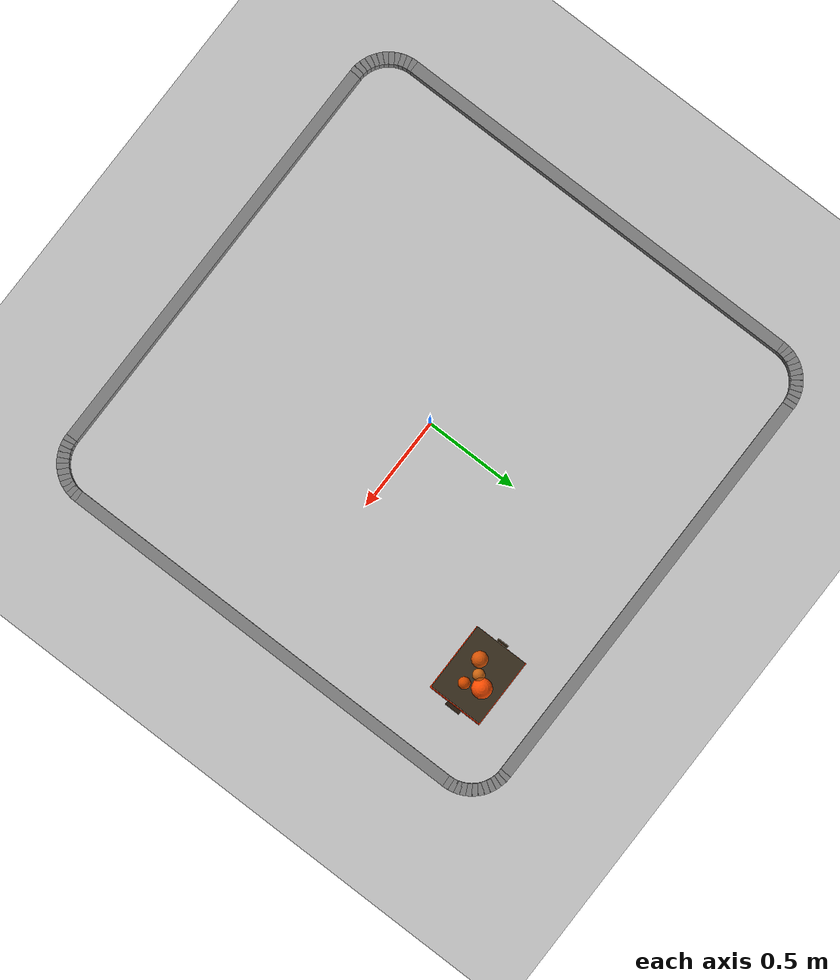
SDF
<sdf version="1.6">
 <world name="test">
  <model name="ground_plane">
   <static>1</static>
   <link name="link">
    <collision name="collision">
     <geometry><plane><normal>0 0 1</normal><size>100 100</size></plane></geometry>
     <surface><friction><ode><mu>100</mu><mu2>50</mu2></ode></friction></surface>
    </collision>
    <visual name="visual">
     <cast_shadows>0</cast_shadows>
     <geometry><plane><normal>0 0 1</normal><size>100 100</size></plane></geometry>
     <material>
      <script><uri>file://media/materials/scripts/gazebo.material</uri><name>Gazebo/Grey</name></script>
     </material>
    </visual>
   </link>
  </model>
  <model name="track_inner">
   <static>1</static>
   <link name="top">
    <pose>0 1.3 0.05 0 -0 0</pose>
    <visual name="v">
     <geometry><box><size>2.2 0.06 0.1</size></box></geometry>
     <material><ambient>0.52 0.52 0.52 1</ambient></material>
    </visual>
    <collision name="c"><geometry><box><size>2.2 0.06 0.1</size></box></geometry></collision>
   </link>
   <link name="bottom">
    <pose>0 -1.3 0.05 0 -0 0</pose>
    <visual name="v">
     <geometry><box><size>2.2 0.06 0.1</size></box></geometry>
     <material><ambient>0.52 0.52 0.52 1</ambient></material>
    </visual>
    <collision name="c"><geometry><box><size>2.2 0.06 0.1</size></box></geometry></collision>
   </link>
   <link name="left">
    <pose>-1.3 0 0.05 0 -0 0</pose>
    <visual name="v">
     <geometry><box><size>0.06 2.2 0.1</size></box></geometry>
     <material><ambient>0.52 0.52 0.52 1</ambient></material>
    </visual>
    <collision name="c"><geometry><box><size>0.06 2.2 0.1</size></box></geometry></collision>
   </link>
   <link name="right">
    <pose>1.3 0 0.05 0 -0 0</pose>
    <visual name="v">
     <geometry><box><size>0.06 2.2 0.1</size></box></geometry>
     <material><ambient>0.52 0.52 0.52 1</ambient></material>
    </visual>
    <collision name="c"><geometry><box><size>0.06 2.2 0.1</size></box></geometry></collision>
   </link>
   <link name="itr0">
    <pose>1.2996 1.1131 0.05 0 -0 1.6362</pose>
    <visual name="v">
     <geometry><box><size>0.0283 0.06 0.1</size></box></geometry>
     <material><ambient>0.52 0.52 0.52 1</ambient></material>
    </visual>
    <collision name="c"><geometry><box><size>0.0283 0.06 0.1</size></box></geometry></collision>
   </link>
   <link name="itr1">
    <pose>1.2962 1.139 0.05 0 -0 1.7671</pose>
    <visual name="v">
     <geometry><box><size>0.0283 0.06 0.1</size></box></geometry>
     <material><ambient>0.52 0.52 0.52 1</ambient></material>
    </visual>
    <collision name="c"><geometry><box><size>0.0283 0.06 0.1</size></box></geometry></collision>
   </link>
   <link name="itr2">
    <pose>1.2894 1.1643 0.05 0 -0 1.898</pose>
    <visual name="v">
     <geometry><box><size>0.0283 0.06 0.1</size></box></geometry>
     <material><ambient>0.52 0.52 0.52 1</ambient></material>
    </visual>
    <collision name="c"><geometry><box><size>0.0283 0.06 0.1</size></box></geometry></collision>
   </link>
   <link name="itr3">
    <pose>1.2794 1.1885 0.05 0 -0 2.0289</pose>
    <visual name="v">
     <geometry><box><size>0.0283 0.06 0.1</size></box></geometry>
     <material><ambient>0.52 0.52 0.52 1</ambient></material>
    </visual>
    <collision name="c"><geometry><box><size>0.0283 0.06 0.1</size></box></geometry></collision>
   </link>
   <link name="itr4">
    <pose>1.2663 1.2111 0.05 0 -0 2.1598</pose>
    <visual name="v">
     <geometry><box><size>0.0283 0.06 0.1</size></box></geometry>
     <material><ambient>0.52 0.52 0.52 1</ambient></material>
    </visual>
    <collision name="c"><geometry><box><size>0.0283 0.06 0.1</size></box></geometry></collision>
   </link>
   <link name="itr5">
    <pose>1.2504 1.2319 0.05 0 -0 2.2907</pose>
    <visual name="v">
     <geometry><box><size>0.0283 0.06 0.1</size></box></geometry>
     <material><ambient>0.52 0.52 0.52 1</ambient></material>
    </visual>
    <collision name="c"><geometry><box><size>0.0283 0.06 0.1</size></box></geometry></collision>
   </link>
   <link name="itr6">
    <pose>1.2319 1.2504 0.05 0 -0 2.4216</pose>
    <visual name="v">
     <geometry><box><size>0.0283 0.06 0.1</size></box></geometry>
     <material><ambient>0.52 0.52 0.52 1</ambient></material>
    </visual>
    <collision name="c"><geometry><box><size>0.0283 0.06 0.1</size></box></geometry></collision>
   </link>
   <link name="itr7">
    <pose>1.2111 1.2663 0.05 0 -0 2.5525</pose>
    <visual name="v">
     <geometry><box><size>0.0283 0.06 0.1</size></box></geometry>
     <material><ambient>0.52 0.52 0.52 1</ambient></material>
    </visual>
    <collision name="c"><geometry><box><size>0.0283 0.06 0.1</size></box></geometry></collision>
   </link>
   <link name="itr8">
    <pose>1.1885 1.2794 0.05 0 -0 2.6834</pose>
    <visual name="v">
     <geometry><box><size>0.0283 0.06 0.1</size></box></geometry>
     <material><ambient>0.52 0.52 0.52 1</ambient></material>
    </visual>
    <collision name="c"><geometry><box><size>0.0283 0.06 0.1</size></box></geometry></collision>
   </link>
   <link name="itr9">
    <pose>1.1643 1.2894 0.05 0 -0 2.8143</pose>
    <visual name="v">
     <geometry><box><size>0.0283 0.06 0.1</size></box></geometry>
     <material><ambient>0.52 0.52 0.52 1</ambient></material>
    </visual>
    <collision name="c"><geometry><box><size>0.0283 0.06 0.1</size></box></geometry></collision>
   </link>
   <link name="itr10">
    <pose>1.139 1.2962 0.05 0 -0 2.9452</pose>
    <visual name="v">
     <geometry><box><size>0.0283 0.06 0.1</size></box></geometry>
     <material><ambient>0.52 0.52 0.52 1</ambient></material>
    </visual>
    <collision name="c"><geometry><box><size>0.0283 0.06 0.1</size></box></geometry></collision>
   </link>
   <link name="itr11">
    <pose>1.1131 1.2996 0.05 0 -0 3.0761</pose>
    <visual name="v">
     <geometry><box><size>0.0283 0.06 0.1</size></box></geometry>
     <material><ambient>0.52 0.52 0.52 1</ambient></material>
    </visual>
    <collision name="c"><geometry><box><size>0.0283 0.06 0.1</size></box></geometry></collision>
   </link>
   <link name="itl0">
    <pose>-1.1131 1.2996 0.05 0 -0 -3.07619</pose>
    <visual name="v">
     <geometry><box><size>0.0283 0.06 0.1</size></box></geometry>
     <material><ambient>0.52 0.52 0.52 1</ambient></material>
    </visual>
    <collision name="c"><geometry><box><size>0.0283 0.06 0.1</size></box></geometry></collision>
   </link>
   <link name="itl1">
    <pose>-1.139 1.2962 0.05 0 -0 -2.94529</pose>
    <visual name="v">
     <geometry><box><size>0.0283 0.06 0.1</size></box></geometry>
     <material><ambient>0.52 0.52 0.52 1</ambient></material>
    </visual>
    <collision name="c"><geometry><box><size>0.0283 0.06 0.1</size></box></geometry></collision>
   </link>
   <link name="itl2">
    <pose>-1.1643 1.2894 0.05 0 -0 -2.81439</pose>
    <visual name="v">
     <geometry><box><size>0.0283 0.06 0.1</size></box></geometry>
     <material><ambient>0.52 0.52 0.52 1</ambient></material>
    </visual>
    <collision name="c"><geometry><box><size>0.0283 0.06 0.1</size></box></geometry></collision>
   </link>
   <link name="itl3">
    <pose>-1.1885 1.2794 0.05 0 -0 -2.68349</pose>
    <visual name="v">
     <geometry><box><size>0.0283 0.06 0.1</size></box></geometry>
     <material><ambient>0.52 0.52 0.52 1</ambient></material>
    </visual>
    <collision name="c"><geometry><box><size>0.0283 0.06 0.1</size></box></geometry></collision>
   </link>
   <link name="itl4">
    <pose>-1.2111 1.2663 0.05 0 -0 -2.55259</pose>
    <visual name="v">
     <geometry><box><size>0.0283 0.06 0.1</size></box></geometry>
     <material><ambient>0.52 0.52 0.52 1</ambient></material>
    </visual>
    <collision name="c"><geometry><box><size>0.0283 0.06 0.1</size></box></geometry></collision>
   </link>
   <link name="itl5">
    <pose>-1.2319 1.2504 0.05 0 -0 -2.42169</pose>
    <visual name="v">
     <geometry><box><size>0.0283 0.06 0.1</size></box></geometry>
     <material><ambient>0.52 0.52 0.52 1</ambient></material>
    </visual>
    <collision name="c"><geometry><box><size>0.0283 0.06 0.1</size></box></geometry></collision>
   </link>
   <link name="itl6">
    <pose>-1.2504 1.2319 0.05 0 -0 -2.29079</pose>
    <visual name="v">
     <geometry><box><size>0.0283 0.06 0.1</size></box></geometry>
     <material><ambient>0.52 0.52 0.52 1</ambient></material>
    </visual>
    <collision name="c"><geometry><box><size>0.0283 0.06 0.1</size></box></geometry></collision>
   </link>
   <link name="itl7">
    <pose>-1.2663 1.2111 0.05 0 -0 -2.15989</pose>
    <visual name="v">
     <geometry><box><size>0.0283 0.06 0.1</size></box></geometry>
     <material><ambient>0.52 0.52 0.52 1</ambient></material>
    </visual>
    <collision name="c"><geometry><box><size>0.0283 0.06 0.1</size></box></geometry></collision>
   </link>
   <link name="itl8">
    <pose>-1.2794 1.1885 0.05 0 -0 -2.02899</pose>
    <visual name="v">
     <geometry><box><size>0.0283 0.06 0.1</size></box></geometry>
     <material><ambient>0.52 0.52 0.52 1</ambient></material>
    </visual>
    <collision name="c"><geometry><box><size>0.0283 0.06 0.1</size></box></geometry></collision>
   </link>
   <link name="itl9">
    <pose>-1.2894 1.1643 0.05 0 -0 -1.89809</pose>
    <visual name="v">
     <geometry><box><size>0.0283 0.06 0.1</size></box></geometry>
     <material><ambient>0.52 0.52 0.52 1</ambient></material>
    </visual>
    <collision name="c"><geometry><box><size>0.0283 0.06 0.1</size></box></geometry></collision>
   </link>
   <link name="itl10">
    <pose>-1.2962 1.139 0.05 0 -0 -1.76719</pose>
    <visual name="v">
     <geometry><box><size>0.0283 0.06 0.1</size></box></geometry>
     <material><ambient>0.52 0.52 0.52 1</ambient></material>
    </visual>
    <collision name="c"><geometry><box><size>0.0283 0.06 0.1</size></box></geometry></collision>
   </link>
   <link name="itl11">
    <pose>-1.2996 1.1131 0.05 0 -0 -1.63628</pose>
    <visual name="v">
     <geometry><box><size>0.0283 0.06 0.1</size></box></geometry>
     <material><ambient>0.52 0.52 0.52 1</ambient></material>
    </visual>
    <collision name="c"><geometry><box><size>0.0283 0.06 0.1</size></box></geometry></collision>
   </link>
   <link name="ibl0">
    <pose>-1.2996 -1.1131 0.05 0 -0 -1.50538</pose>
    <visual name="v">
     <geometry><box><size>0.0283 0.06 0.1</size></box></geometry>
     <material><ambient>0.52 0.52 0.52 1</ambient></material>
    </visual>
    <collision name="c"><geometry><box><size>0.0283 0.06 0.1</size></box></geometry></collision>
   </link>
   <link name="ibl1">
    <pose>-1.2962 -1.139 0.05 0 -0 -1.37448</pose>
    <visual name="v">
     <geometry><box><size>0.0283 0.06 0.1</size></box></geometry>
     <material><ambient>0.52 0.52 0.52 1</ambient></material>
    </visual>
    <collision name="c"><geometry><box><size>0.0283 0.06 0.1</size></box></geometry></collision>
   </link>
   <link name="ibl2">
    <pose>-1.2894 -1.1643 0.05 0 -0 -1.24358</pose>
    <visual name="v">
     <geometry><box><size>0.0283 0.06 0.1</size></box></geometry>
     <material><ambient>0.52 0.52 0.52 1</ambient></material>
    </visual>
    <collision name="c"><geometry><box><size>0.0283 0.06 0.1</size></box></geometry></collision>
   </link>
   <link name="ibl3">
    <pose>-1.2794 -1.1885 0.05 0 -0 -1.11268</pose>
    <visual name="v">
     <geometry><box><size>0.0283 0.06 0.1</size></box></geometry>
     <material><ambient>0.52 0.52 0.52 1</ambient></material>
    </visual>
    <collision name="c"><geometry><box><size>0.0283 0.06 0.1</size></box></geometry></collision>
   </link>
   <link name="ibl4">
    <pose>-1.2663 -1.2111 0.05 0 -0 -0.981785</pose>
    <visual name="v">
     <geometry><box><size>0.0283 0.06 0.1</size></box></geometry>
     <material><ambient>0.52 0.52 0.52 1</ambient></material>
    </visual>
    <collision name="c"><geometry><box><size>0.0283 0.06 0.1</size></box></geometry></collision>
   </link>
   <link name="ibl5">
    <pose>-1.2504 -1.2319 0.05 0 -0 -0.850885</pose>
    <visual name="v">
     <geometry><box><size>0.0283 0.06 0.1</size></box></geometry>
     <material><ambient>0.52 0.52 0.52 1</ambient></material>
    </visual>
    <collision name="c"><geometry><box><size>0.0283 0.06 0.1</size></box></geometry></collision>
   </link>
   <link name="ibl6">
    <pose>-1.2319 -1.2504 0.05 0 -0 -0.719985</pose>
    <visual name="v">
     <geometry><box><size>0.0283 0.06 0.1</size></box></geometry>
     <material><ambient>0.52 0.52 0.52 1</ambient></material>
    </visual>
    <collision name="c"><geometry><box><size>0.0283 0.06 0.1</size></box></geometry></collision>
   </link>
   <link name="ibl7">
    <pose>-1.2111 -1.2663 0.05 0 -0 -0.589085</pose>
    <visual name="v">
     <geometry><box><size>0.0283 0.06 0.1</size></box></geometry>
     <material><ambient>0.52 0.52 0.52 1</ambient></material>
    </visual>
    <collision name="c"><geometry><box><size>0.0283 0.06 0.1</size></box></geometry></collision>
   </link>
   <link name="ibl8">
    <pose>-1.1885 -1.2794 0.05 0 -0 -0.458185</pose>
    <visual name="v">
     <geometry><box><size>0.0283 0.06 0.1</size></box></geometry>
     <material><ambient>0.52 0.52 0.52 1</ambient></material>
    </visual>
    <collision name="c"><geometry><box><size>0.0283 0.06 0.1</size></box></geometry></collision>
   </link>
   <link name="ibl9">
    <pose>-1.1643 -1.2894 0.05 0 -0 -0.327285</pose>
    <visual name="v">
     <geometry><box><size>0.0283 0.06 0.1</size></box></geometry>
     <material><ambient>0.52 0.52 0.52 1</ambient></material>
    </visual>
    <collision name="c"><geometry><box><size>0.0283 0.06 0.1</size></box></geometry></collision>
   </link>
   <link name="ibl10">
    <pose>-1.139 -1.2962 0.05 0 -0 -0.196385</pose>
    <visual name="v">
     <geometry><box><size>0.0283 0.06 0.1</size></box></geometry>
     <material><ambient>0.52 0.52 0.52 1</ambient></material>
    </visual>
    <collision name="c"><geometry><box><size>0.0283 0.06 0.1</size></box></geometry></collision>
   </link>
   <link name="ibl11">
    <pose>-1.1131 -1.2996 0.05 0 -0 -0.065485</pose>
    <visual name="v">
     <geometry><box><size>0.0283 0.06 0.1</size></box></geometry>
     <material><ambient>0.52 0.52 0.52 1</ambient></material>
    </visual>
    <collision name="c"><geometry><box><size>0.0283 0.06 0.1</size></box></geometry></collision>
   </link>
   <link name="ibr0">
    <pose>1.1131 -1.2996 0.05 0 -0 0.065415</pose>
    <visual name="v">
     <geometry><box><size>0.0283 0.06 0.1</size></box></geometry>
     <material><ambient>0.52 0.52 0.52 1</ambient></material>
    </visual>
    <collision name="c"><geometry><box><size>0.0283 0.06 0.1</size></box></geometry></collision>
   </link>
   <link name="ibr1">
    <pose>1.139 -1.2962 0.05 0 -0 0.196315</pose>
    <visual name="v">
     <geometry><box><size>0.0283 0.06 0.1</size></box></geometry>
     <material><ambient>0.52 0.52 0.52 1</ambient></material>
    </visual>
    <collision name="c"><geometry><box><size>0.0283 0.06 0.1</size></box></geometry></collision>
   </link>
   <link name="ibr2">
    <pose>1.1643 -1.2894 0.05 0 -0 0.327215</pose>
    <visual name="v">
     <geometry><box><size>0.0283 0.06 0.1</size></box></geometry>
     <material><ambient>0.52 0.52 0.52 1</ambient></material>
    </visual>
    <collision name="c"><geometry><box><size>0.0283 0.06 0.1</size></box></geometry></collision>
   </link>
   <link name="ibr3">
    <pose>1.1885 -1.2794 0.05 0 -0 0.458115</pose>
    <visual name="v">
     <geometry><box><size>0.0283 0.06 0.1</size></box></geometry>
     <material><ambient>0.52 0.52 0.52 1</ambient></material>
    </visual>
    <collision name="c"><geometry><box><size>0.0283 0.06 0.1</size></box></geometry></collision>
   </link>
   <link name="ibr4">
    <pose>1.2111 -1.2663 0.05 0 -0 0.589015</pose>
    <visual name="v">
     <geometry><box><size>0.0283 0.06 0.1</size></box></geometry>
     <material><ambient>0.52 0.52 0.52 1</ambient></material>
    </visual>
    <collision name="c"><geometry><box><size>0.0283 0.06 0.1</size></box></geometry></collision>
   </link>
   <link name="ibr5">
    <pose>1.2319 -1.2504 0.05 0 -0 0.719915</pose>
    <visual name="v">
     <geometry><box><size>0.0283 0.06 0.1</size></box></geometry>
     <material><ambient>0.52 0.52 0.52 1</ambient></material>
    </visual>
    <collision name="c"><geometry><box><size>0.0283 0.06 0.1</size></box></geometry></collision>
   </link>
   <link name="ibr6">
    <pose>1.2504 -1.2319 0.05 0 -0 0.850815</pose>
    <visual name="v">
     <geometry><box><size>0.0283 0.06 0.1</size></box></geometry>
     <material><ambient>0.52 0.52 0.52 1</ambient></material>
    </visual>
    <collision name="c"><geometry><box><size>0.0283 0.06 0.1</size></box></geometry></collision>
   </link>
   <link name="ibr7">
    <pose>1.2663 -1.2111 0.05 0 -0 0.981715</pose>
    <visual name="v">
     <geometry><box><size>0.0283 0.06 0.1</size></box></geometry>
     <material><ambient>0.52 0.52 0.52 1</ambient></material>
    </visual>
    <collision name="c"><geometry><box><size>0.0283 0.06 0.1</size></box></geometry></collision>
   </link>
   <link name="ibr8">
    <pose>1.2794 -1.1885 0.05 0 -0 1.11261</pose>
    <visual name="v">
     <geometry><box><size>0.0283 0.06 0.1</size></box></geometry>
     <material><ambient>0.52 0.52 0.52 1</ambient></material>
    </visual>
    <collision name="c"><geometry><box><size>0.0283 0.06 0.1</size></box></geometry></collision>
   </link>
   <link name="ibr9">
    <pose>1.2894 -1.1643 0.05 0 -0 1.24351</pose>
    <visual name="v">
     <geometry><box><size>0.0283 0.06 0.1</size></box></geometry>
     <material><ambient>0.52 0.52 0.52 1</ambient></material>
    </visual>
    <collision name="c"><geometry><box><size>0.0283 0.06 0.1</size></box></geometry></collision>
   </link>
   <link name="ibr10">
    <pose>1.2962 -1.139 0.05 0 -0 1.37441</pose>
    <visual name="v">
     <geometry><box><size>0.0283 0.06 0.1</size></box></geometry>
     <material><ambient>0.52 0.52 0.52 1</ambient></material>
    </visual>
    <collision name="c"><geometry><box><size>0.0283 0.06 0.1</size></box></geometry></collision>
   </link>
   <link name="ibr11">
    <pose>1.2996 -1.1131 0.05 0 -0 1.50531</pose>
    <visual name="v">
     <geometry><box><size>0.0283 0.06 0.1</size></box></geometry>
     <material><ambient>0.52 0.52 0.52 1</ambient></material>
    </visual>
    <collision name="c"><geometry><box><size>0.0283 0.06 0.1</size></box></geometry></collision>
   </link>
  </model>
  <model name="building_fire">
   <static>1</static>
   <link name="body">
    <pose>0 0 0.275 0 -0 0</pose>
    <visual name="body_v">
     <geometry><box><size>0.35 0.28 0.55</size></box></geometry>
     <material><ambient>0.25 0.2 0.15 1</ambient><diffuse>0.22 0.18 0.12 1</diffuse></material>
    </visual>
    <collision name="body_c"><geometry><box><size>0.35 0.28 0.55</size></box></geometry></collision>
   </link>
   <link name="win0">
    <pose>0 0 0.1 0 -0 0</pose>
    <visual name="w0v">
     <geometry><box><size>0.36 0.29 0.04</size></box></geometry>
     <material><ambient>1 0.15 0 1</ambient><diffuse>1 0.1 0 1</diffuse></material>
    </visual>
   </link>
   <link name="win1">
    <pose>0 0 0.22 0 -0 0</pose>
    <visual name="w1v">
     <geometry><box><size>0.36 0.29 0.04</size></box></geometry>
     <material><ambient>1 0.2 0 1</ambient><diffuse>1 0.15 0 1</diffuse></material>
    </visual>
   </link>
   <link name="win2">
    <pose>0 0 0.34 0 -0 0</pose>
    <visual name="w2v">
     <geometry><box><size>0.36 0.29 0.04</size></box></geometry>
     <material><ambient>1 0.25 0 1</ambient><diffuse>1 0.2 0 1</diffuse></material>
    </visual>
   </link>
   <link name="flame0">
    <pose>0.04 0.05 0.57 0 -0 0</pose>
    <visual name="f0v">
     <geometry><sphere><radius>0.05</radius></sphere></geometry>
     <material><ambient>1 0.3 0 0.9</ambient></material>
    </visual>
   </link>
   <link name="flame1">
    <pose>-0.06 -0.04 0.58 0 -0 0</pose>
    <visual name="f1v">
     <geometry><sphere><radius>0.04</radius></sphere></geometry>
     <material><ambient>1 0.4 0.05 0.85</ambient></material>
    </visual>
   </link>
   <link name="flame2">
    <pose>0 0 0.59 0 -0 0</pose>
    <visual name="f2v">
     <geometry><sphere><radius>0.03</radius></sphere></geometry>
     <material><ambient>1 0.5 0.1 0.8</ambient></material>
    </visual>
   </link>
   <link name="flame3">
    <pose>0.07 -0.03 0.56 0 -0 0</pose>
    <visual name="f3v">
     <geometry><sphere><radius>0.03</radius></sphere></geometry>
     <material><ambient>1 0.35 0 0.85</ambient></material>
    </visual>
   </link>
   <link name="scorch1">
    <pose>0.18 0 0.3 0 -0 0</pose>
    <visual name="sc1v">
     <geometry><box><size>0.04 0.08 0.1</size></box></geometry>
     <material><ambient>0.15 0.1 0.05 1</ambient></material>
    </visual>
   </link>
   <link name="scorch2">
    <pose>-0.18 0 0.15 0 -0 0</pose>
    <visual name="sc2v">
     <geometry><box><size>0.04 0.06 0.08</size></box></geometry>
     <material><ambient>0.12 0.08 0.03 1</ambient></material>
    </visual>
   </link>
   <joint name="j_w0" type="fixed"><parent>body</parent><child>win0</child></joint>
   <joint name="j_w1" type="fixed"><parent>body</parent><child>win1</child></joint>
   <joint name="j_w2" type="fixed"><parent>body</parent><child>win2</child></joint>
   <joint name="j_f0" type="fixed"><parent>body</parent><child>flame0</child></joint>
   <joint name="j_f1" type="fixed"><parent>body</parent><child>flame1</child></joint>
   <joint name="j_f2" type="fixed"><parent>body</parent><child>flame2</child></joint>
   <joint name="j_f3" type="fixed"><parent>body</parent><child>flame3</child></joint>
   <joint name="j_sc1" type="fixed"><parent>body</parent><child>scorch1</child></joint>
   <joint name="j_sc2" type="fixed"><parent>body</parent><child>scorch2</child></joint>
   <pose>0.817862 0.914882 0 0 -0 0</pose>
  </model>
 </world>
</sdf>
